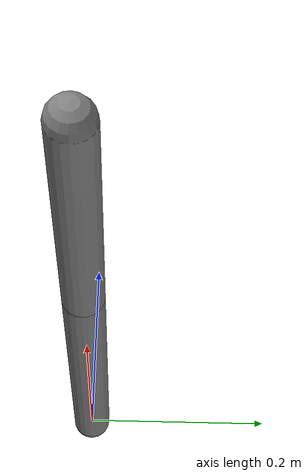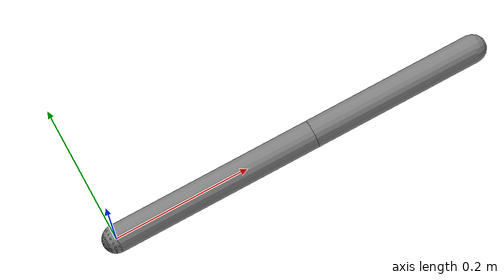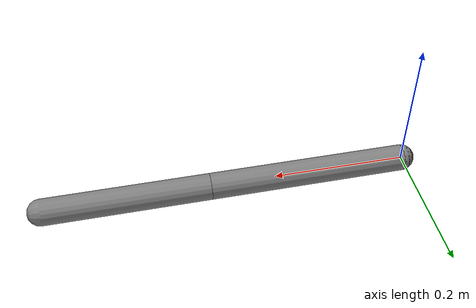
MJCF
<mujoco>
  <option gravity="0 0 -9.81" timestep="0.01"/>

  <worldbody>
    <body name="base" pos="0 0 0">
      <geom type="sphere" size="0.02"/>

      <body name="upper_arm" pos="0 0 0">
        <joint name="shoulder" type="hinge" axis="0 0 1" range="-180 180"/>
        <geom type="capsule" fromto="0 0 0 0.3 0 0" size="0.02"/>

        <body name="forearm" pos="0.3 0 0">
          <joint name="elbow" type="hinge" axis="0 0 1" range="-180 180"/>
          <geom type="capsule" fromto="0 0 0 0.25 0 0" size="0.02"/>
        </body>
      </body>
    </body>
  </worldbody>
</mujoco>
